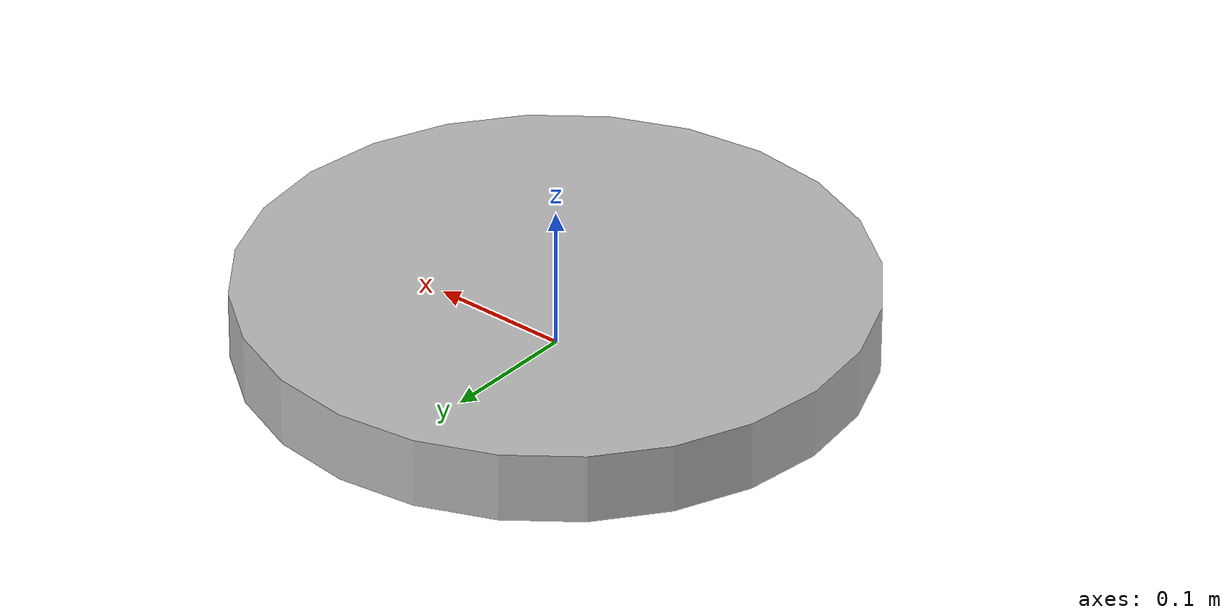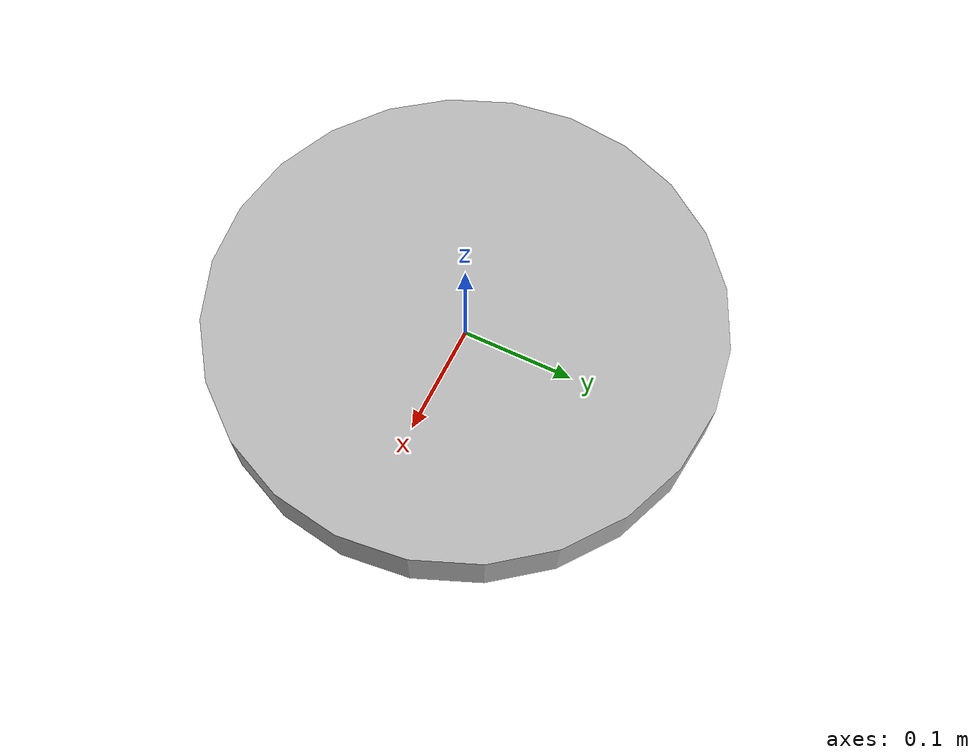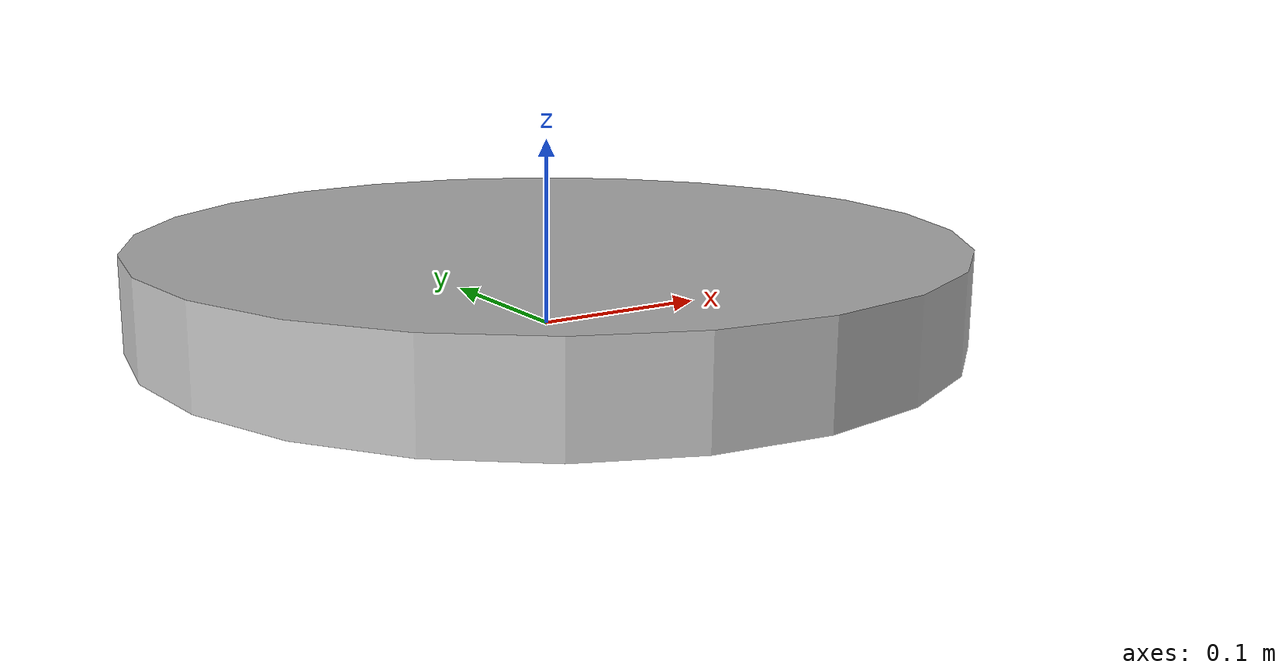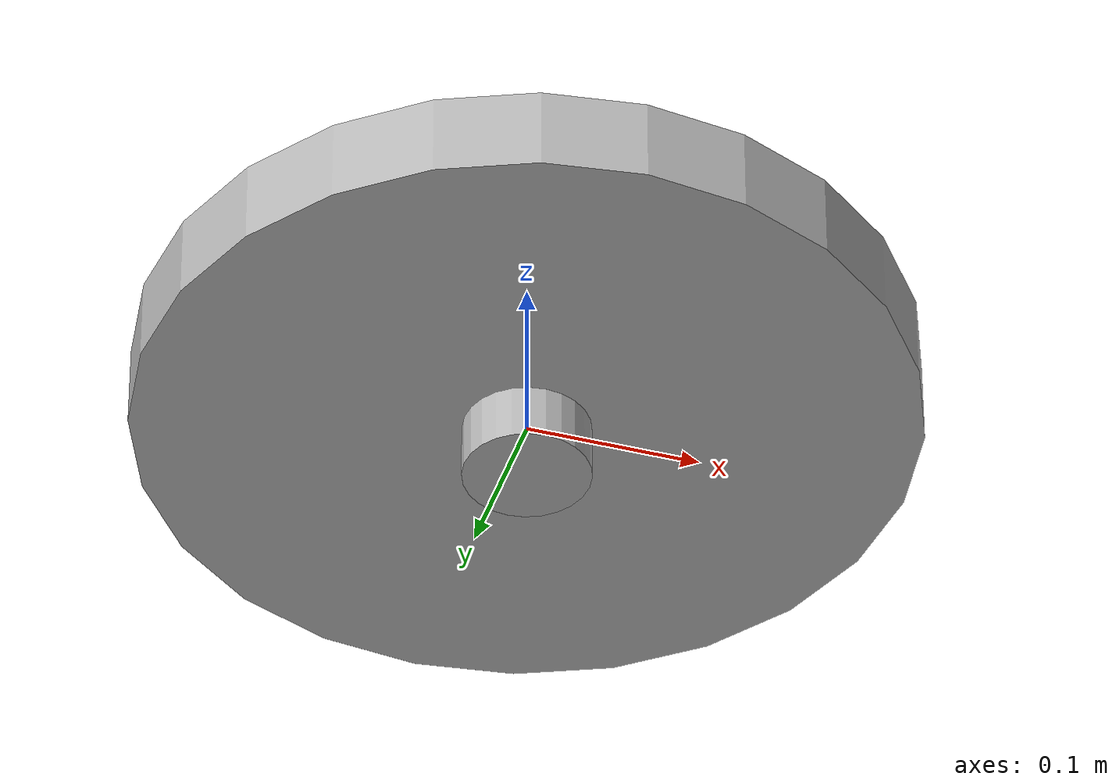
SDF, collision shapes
<sdf version="1.9">
<model name="vacuum cleaner" canonical_link="new_link">
  <joint name="joint_caestar_wheel" type="continuous">
    <pose relative_to="link_caestar_wheel_joint">-0.00010 -0.00150 -0.01350 -0.00000 1.57080 0.00000</pose>
    <parent>link_caestar_wheel_joint</parent>
    <child>link_caestar_wheel</child>
    <axis>
      <limit>
        <lower>0</lower>
        <upper>0</upper>
        <effort>0.00000</effort>
        <velocity>0.00000</velocity>
      </limit>
      <xyz>0.00000 0.00000 1.00000</xyz>
    </axis>
  </joint>
  <joint name="joint_caestar_wheel_joint" type="continuous">
    <pose relative_to="new_link">0.00000 0.16272 -0.01022 0.00000 0.00000 0.00000</pose>
    <parent>new_link</parent>
    <child>link_caestar_wheel_joint</child>
    <axis>
      <limit>
        <lower>0</lower>
        <upper>0</upper>
        <effort>0.00000</effort>
        <velocity>0.00000</velocity>
      </limit>
      <xyz>0.00000 0.00000 1.00000</xyz>
    </axis>
  </joint>
  <joint name="joint_left_chetka" type="continuous">
    <pose relative_to="new_link">-0.12416 0.12781 0.00050 0.00000 0.00000 0.00000</pose>
    <parent>new_link</parent>
    <child>link_chetka_left</child>
    <axis>
      <limit>
        <lower>0</lower>
        <upper>0</upper>
        <effort>0.00000</effort>
        <velocity>0.00000</velocity>
      </limit>
      <xyz>0.00000 0.00000 1.00000</xyz>
    </axis>
  </joint>
  <joint name="joint_left_wheel" type="continuous">
    <pose relative_to="new_link">-0.11287 -0.05145 -0.00837 0.00000 -1.57080 0.00000</pose>
    <parent>new_link</parent>
    <child>link_left_wheel</child>
    <axis>
      <limit>
        <lower>0</lower>
        <upper>0</upper>
        <effort>0.60000</effort>
        <velocity>0.40000</velocity>
      </limit>
      <xyz>0.00000 0.00000 1.00000</xyz>
    </axis>
  </joint>
  <joint name="joint_right_chetka" type="continuous">
    <pose relative_to="new_link">0.12494 0.12760 0.00050 0.00000 0.00000 0.00000</pose>
    <parent>new_link</parent>
    <child>link_chetka_right</child>
    <axis>
      <limit>
        <lower>0</lower>
        <upper>0</upper>
        <effort>0.00000</effort>
        <velocity>0.00000</velocity>
      </limit>
      <xyz>0.00000 0.00000 1.00000</xyz>
    </axis>
  </joint>
  <joint name="joint_right_wheel" type="continuous">
    <pose relative_to="new_link">0.11287 -0.05145 -0.00837 -0.00000 1.57080 0.00000</pose>
    <parent>new_link</parent>
    <child>link_right_wheel</child>
    <axis>
      <limit>
        <lower>0</lower>
        <upper>0</upper>
        <effort>0.60000</effort>
        <velocity>0.40000</velocity>
      </limit>
      <xyz>0.00000 0.00000 1.00000</xyz>
    </axis>
  </joint>
  <link name="link_caestar_wheel">
    <collision name="wheel_caestar_collision">
      <pose relative_to="link_caestar_wheel">0.00000 -0.00000 0.00000 -3.14159 0.00000 1.57080</pose>
      <geometry>
        <cylinder>
          <radius>0.01207</radius>
          <length>0.01811</length>
        </cylinder>
      </geometry>
      <surface>
        <contact/>
      </surface>
    </collision>
    <inertial>
      <inertia>
        <ixx>0.00017</ixx>
        <ixy>0.00000</ixy>
        <ixz>-0.00000</ixz>
        <iyy>0.00017</iyy>
        <iyz>-0.00000</iyz>
        <izz>0.00014</izz>
      </inertia>
      <pose relative_to="link_caestar_wheel">-0.00000 0.00000 0.00000 0.00000 0.00000 0.00000</pose>
      <mass>2.00000</mass>
    </inertial>
    <visual name="wheel_caestar">
      <pose relative_to="link_caestar_wheel">-0.00000 0.00000 0.00000 1.57080 0.00000 1.57080</pose>
      <geometry>
        <cylinder>
          <radius>0.01200</radius>
          <length>0.02396</length>
        </cylinder>
      </geometry>
    </visual>
  </link>
  <link name="link_caestar_wheel_joint"/>
  <link name="link_chetka_left">
    <collision name="chetka_left_collision">
      <pose relative_to="link_chetka_left">-0.00000 0.00000 0.00012 0.00000 0.00000 0.00000</pose>
      <geometry>
        <cylinder>
          <radius>0.01420</radius>
          <length>0.01129</length>
        </cylinder>
      </geometry>
      <surface>
        <contact/>
      </surface>
    </collision>
    <collision name="chetka_left_collision.000">
      <pose relative_to="link_chetka_left">-0.00000 0.00000 0.00012 0.00000 0.00000 0.00000</pose>
      <geometry>
        <cylinder>
          <radius>0.01420</radius>
          <length>0.01129</length>
        </cylinder>
      </geometry>
      <surface>
        <contact/>
      </surface>
    </collision>
    <inertial>
      <inertia>
        <ixx>0.00070</ixx>
        <ixy>-0.00000</ixy>
        <ixz>-0.00000</ixz>
        <iyy>0.00069</iyy>
        <iyz>-0.00000</iyz>
        <izz>0.00053</izz>
      </inertia>
      <pose relative_to="link_chetka_left">-0.00000 0.00000 0.00048 0.00000 0.00000 0.00000</pose>
      <mass>2.00000</mass>
    </inertial>
    <visual name="chetka_left">
      <pose relative_to="link_chetka_left">-0.00000 0.00000 0.00000 0.00000 0.00000 0.00000</pose>
      <geometry>
        <mesh>
          <uri>../meshes/stl/chetka.001.stl</uri>
          <scale>1.00000 1.00000 1.00000</scale>
        </mesh>
      </geometry>
    </visual>
  </link>
  <link name="link_chetka_right">
    <collision name="chetka_right_collision">
      <pose relative_to="link_chetka_right">0.00000 -0.00000 0.00014 0.00000 0.00000 0.00000</pose>
      <geometry>
        <cylinder>
          <radius>0.01735</radius>
          <length>0.01379</length>
        </cylinder>
      </geometry>
      <surface>
        <contact/>
      </surface>
    </collision>
    <inertial>
      <inertia>
        <ixx>0.00070</ixx>
        <ixy>-0.00000</ixy>
        <ixz>-0.00000</ixz>
        <iyy>0.00069</iyy>
        <iyz>-0.00000</iyz>
        <izz>0.00053</izz>
      </inertia>
      <pose relative_to="link_chetka_right">0.00000 -0.00000 0.00048 0.00000 0.00000 0.00000</pose>
      <mass>2.00000</mass>
    </inertial>
    <visual name="chetka_right">
      <pose relative_to="link_chetka_right">0.00000 0.00000 0.00000 0.00000 0.00000 0.00000</pose>
      <geometry>
        <mesh>
          <uri>../meshes/stl/chetka.stl</uri>
          <scale>1.00000 1.00000 1.00000</scale>
        </mesh>
      </geometry>
    </visual>
  </link>
  <link name="link_left_wheel">
    <collision name="wheel_left_collision">
      <pose relative_to="link_left_wheel">0.00000 0.00000 -0.00000 3.14159 -0.00000 0.00000</pose>
      <geometry>
        <cylinder>
          <radius>0.03603</radius>
          <length>0.06589</length>
        </cylinder>
      </geometry>
      <surface>
        <contact/>
      </surface>
    </collision>
    <inertial>
      <inertia>
        <ixx>0.00075</ixx>
        <ixy>0.00000</ixy>
        <ixz>-0.00000</ixz>
        <iyy>0.00079</iyy>
        <iyz>-0.00000</iyz>
        <izz>0.00079</izz>
      </inertia>
      <pose relative_to="link_left_wheel">0.00000 0.00000 0.00000 0.00000 0.00000 0.00000</pose>
      <mass>2.00000</mass>
    </inertial>
    <visual name="wheel_left">
      <pose relative_to="link_left_wheel">0.00000 0.00000 0.00000 3.14159 -0.00000 0.00000</pose>
      <geometry>
        <cylinder>
          <radius>0.02734</radius>
          <length>0.05000</length>
        </cylinder>
      </geometry>
    </visual>
  </link>
  <link name="link_right_wheel">
    <collision name="wheel_right_collision">
      <pose relative_to="link_right_wheel">-0.00000 0.00000 -0.00000 3.14159 0.00000 -0.93878</pose>
      <geometry>
        <cylinder>
          <radius>0.00423</radius>
          <length>0.00773</length>
        </cylinder>
      </geometry>
      <surface>
        <contact/>
      </surface>
    </collision>
    <collision name="wheel_right_collision.000">
      <pose relative_to="link_right_wheel">-0.00000 0.00000 -0.00000 3.14159 0.00000 -0.93878</pose>
      <geometry>
        <cylinder>
          <radius>0.02765</radius>
          <length>0.05056</length>
        </cylinder>
      </geometry>
      <surface>
        <contact/>
      </surface>
    </collision>
    <inertial>
      <inertia>
        <ixx>0.00075</ixx>
        <ixy>0.00000</ixy>
        <ixz>0.00000</ixz>
        <iyy>0.00079</iyy>
        <iyz>0.00000</iyz>
        <izz>0.00079</izz>
      </inertia>
      <pose relative_to="link_right_wheel">0.00000 0.00000 -0.00000 0.00000 0.00000 0.00000</pose>
      <mass>2.00000</mass>
    </inertial>
    <visual name="wheel_right">
      <pose relative_to="link_right_wheel">0.00000 0.00000 -0.00000 3.14159 0.00000 -0.93878</pose>
      <geometry>
        <cylinder>
          <radius>0.02734</radius>
          <length>0.05000</length>
        </cylinder>
      </geometry>
    </visual>
  </link>
  <link name="new_link">
    <collision name="body_collision">
      <pose relative_to="new_link">0.00000 0.00000 0.02500 0.00000 0.00000 0.00000</pose>
      <geometry>
        <cylinder>
          <radius>0.22000</radius>
          <length>0.05000</length>
        </cylinder>
      </geometry>
      <surface>
        <contact/>
      </surface>
    </collision>
    <inertial>
      <inertia>
        <ixx>0.02462</ixx>
        <ixy>0.00000</ixy>
        <ixz>0.00000</ixz>
        <iyy>0.02462</iyy>
        <iyz>0.00000</iyz>
        <izz>0.04840</izz>
      </inertia>
      <pose relative_to="new_link">0.00000 0.00000 0.00000 0.00000 0.00000 0.00000</pose>
      <mass>2.00000</mass>
    </inertial>
    <visual name="body">
      <pose relative_to="new_link">0.00000 0.00000 0.00000 0.00000 0.00000 0.00000</pose>
      <geometry>
        <cylinder>
          <radius>0.22000</radius>
          <length>0.05000</length>
        </cylinder>
      </geometry>
    </visual>
  </link>
  <plugin filename="gz-sim-joint-position-controller-system" name="gz::sim::systems::JointPositionController">
    <joint_name>joint_left_wheel</joint_name>
    <p_gain>20.00000</p_gain>
    <i_gain>0.00000</i_gain>
    <d_gain>0.00000</d_gain>
  </plugin>
  <plugin filename="gz-sim-joint-position-controller-system" name="gz::sim::systems::JointPositionController">
    <joint_name>joint_right_wheel</joint_name>
    <p_gain>20.00000</p_gain>
    <i_gain>0.00000</i_gain>
    <d_gain>0.00000</d_gain>
  </plugin>
</model>
</sdf>
